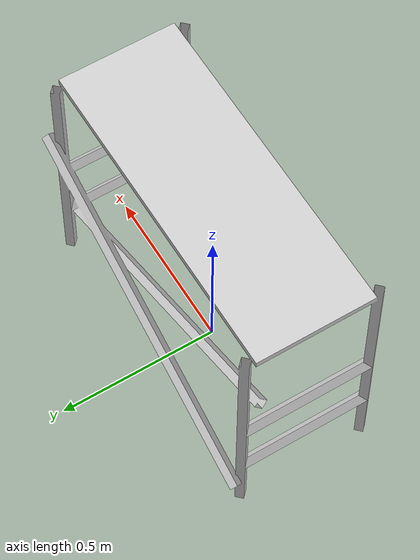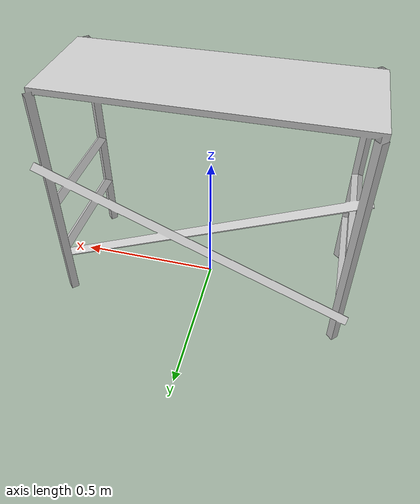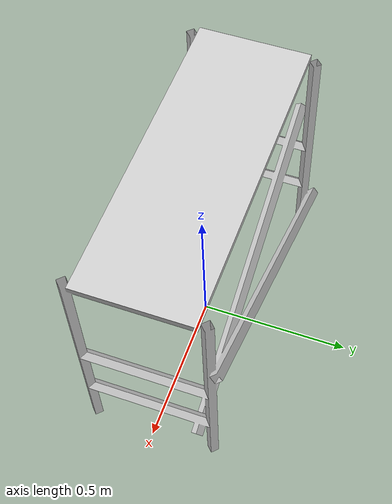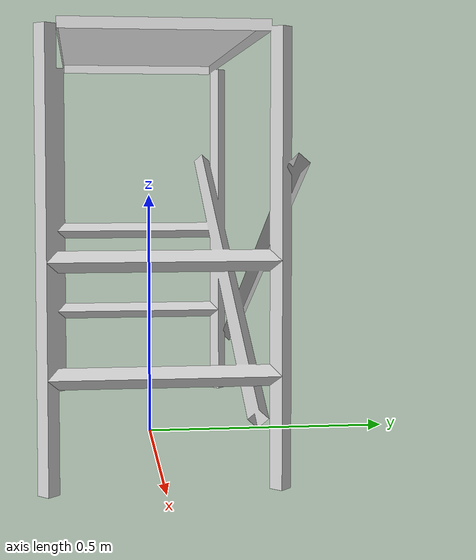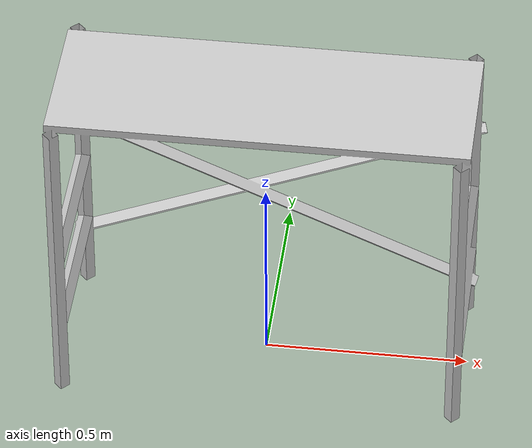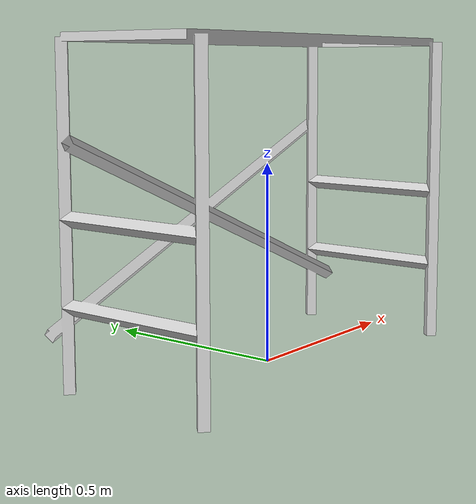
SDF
<?xml version="1.0" ?>
<sdf version="1.6">
  <model name="scaffolding">
    <static>true</static>
    <link name="link">
      <collision name="collision">
        <pose>0 0 0 0 0 0</pose>
        <geometry>
          <mesh>
            <scale>1 1 1</scale>
            <uri>model://scaffolding/meshes/scaffolding.dae</uri>
          </mesh>
        </geometry>
      </collision>
      <visual name="visual">
        <pose>0 0 0 0 0 0</pose>
        <geometry>
          <mesh>
            <scale>1 1 1</scale>
            <uri>model://scaffolding/meshes/scaffolding.dae</uri>
          </mesh>
        </geometry>
      </visual>
    </link>
  </model>
</sdf>
